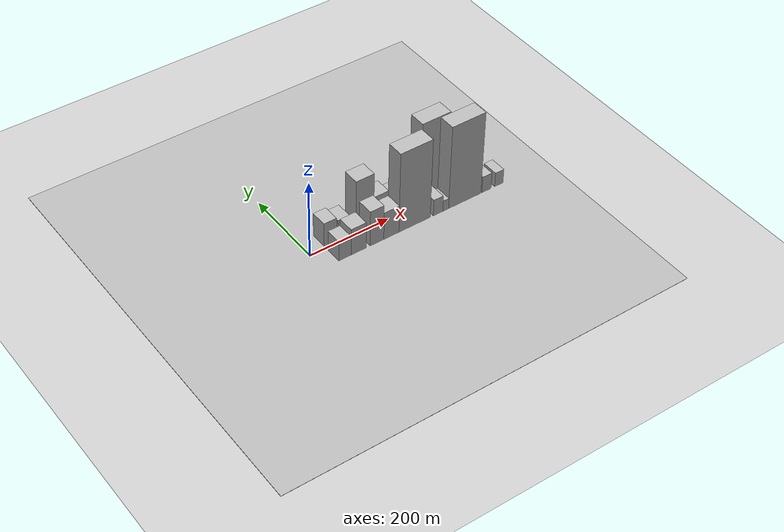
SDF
<?xml version="1.0" encoding="utf-8"?>

<sdf version="1.6">

   <world name="default">

      <gui fullscreen="0">

         <camera name="user_camera">

            <pose>-15 0 4.57585 0 0 0</pose>

            <view_controller>orbit</view_controller>

         </camera>

      </gui>

      <scene>

         <sky>

           <clouds>

             <speed>12</speed>

           </clouds>

         </sky>

         <ambient>0.4 0.4 0.4 1</ambient>

         <background>0.7 0.7 0.7 1</background>

         <shadows>1</shadows>

      </scene>

      <gravity>0 0 -9.8066</gravity>

      <magnetic_field>6e-06 2.3e-05 -4.2e-05</magnetic_field>

      <physics default="0" name="default_physics" type="ode">

         <ode>

            <solver>

               <type>quick</type>

               <iters>10</iters>

               <sor>1.0</sor>

               <use_dynamic_moi_rescaling>0</use_dynamic_moi_rescaling>

            </solver>

            <constraints>

               <cfm>0</cfm>

               <erp>0.2</erp>

               <contact_max_correcting_vel>100</contact_max_correcting_vel>

               <contact_surface_layer>0.001</contact_surface_layer>

            </constraints>

         </ode>

         <max_step_size>0.004</max_step_size>

         <real_time_factor>1</real_time_factor>

         <real_time_update_rate>250</real_time_update_rate>

      </physics>

      <light name="sun" type="directional">

         <cast_shadows>1</cast_shadows>

         <pose>0 0 10 0 0 0</pose>

         <diffuse>0.8 0.8 0.8 1</diffuse>

         <specular>0.2 0.2 0.2 1</specular>

         <attenuation>

            <range>1000</range>

            <constant>0.9</constant>

            <linear>0.01</linear>

            <quadratic>0.001</quadratic>

         </attenuation>

         <direction>-0.5 0.1 -0.9</direction>

      </light>

      <include>

         <name>ground_plane_1</name>

         <uri>model://HANNAS_ground_plane</uri>

         <pose>0 0 0  0 0 0</pose>

      </include>

      <include>

         <name>ground_plane_2</name>

         <uri>model://HANNAS_ground_plane</uri>

         <pose>100 0 0  0 0 0</pose>

      </include>

      <model name="building_1">

         <static>1</static>

         <pose frame="">55.9267 27.5000 0 0.000000 0.000000 1.570796</pose>

         <link name="link">

            <pose frame="">0 0 31.50 0 0 0</pose>

            <collision name="collision">

               <geometry>

                  <box>

                     <size>40.0000 31.8534 63.0000</size>

                  </box>

               </geometry>

               <max_contacts>10</max_contacts>

               <surface>

                  <contact>

                     <ode/>

                  </contact>

                  <bounce/>

                  <friction>

                     <torsional>

                        <ode/>

                     </torsional>

                     <ode/>

                  </friction>

               </surface>

            </collision>

            <visual name="visual">

               <cast_shadows>0</cast_shadows>

               <geometry>

                  <box>

                     <size>40.0000 31.8534 63.0000</size>

                  </box>

               </geometry>

               <material>

                  <script>

                     <uri>model://HANNAS_wall/materials/scripts</uri>

                     <uri>model://HANNAS_wall/materials/textures</uri>

                     <name>vrc/HANNAS_wall</name>

                  </script>

               </material>

            </visual>

            <self_collide>0</self_collide>

            <enable_wind>0</enable_wind>

            <kinematic>0</kinematic>

         </link>

      </model>

      <model name="building_2">

         <static>1</static>

         <pose frame="">90.5737 27.5000 0 0.000000 0.000000 1.570796</pose>

         <link name="link">

            <pose frame="">0 0 27.00 0 0 0</pose>

            <collision name="collision">

               <geometry>

                  <box>

                     <size>40.0000 29.4405 54.0000</size>

                  </box>

               </geometry>

               <max_contacts>10</max_contacts>

               <surface>

                  <contact>

                     <ode/>

                  </contact>

                  <bounce/>

                  <friction>

                     <torsional>

                        <ode/>

                     </torsional>

                     <ode/>

                  </friction>

               </surface>

            </collision>

            <visual name="visual">

               <cast_shadows>0</cast_shadows>

               <geometry>

                  <box>

                     <size>40.0000 29.4405 54.0000</size>

                  </box>

               </geometry>

               <material>

                  <script>

                     <uri>model://HANNAS_wall/materials/scripts</uri>

                     <uri>model://HANNAS_wall/materials/textures</uri>

                     <name>vrc/HANNAS_wall</name>

                  </script>

               </material>

            </visual>

            <self_collide>0</self_collide>

            <enable_wind>0</enable_wind>

            <kinematic>0</kinematic>

         </link>

      </model>

      <model name="building_3">

         <static>1</static>

         <pose frame="">118.4894 27.5000 0 0.000000 0.000000 1.570796</pose>

         <link name="link">

            <pose frame="">0 0 7.50 0 0 0</pose>

            <collision name="collision">

               <geometry>

                  <box>

                     <size>40.0000 6.3909 15.0000</size>

                  </box>

               </geometry>

               <max_contacts>10</max_contacts>

               <surface>

                  <contact>

                     <ode/>

                  </contact>

                  <bounce/>

                  <friction>

                     <torsional>

                        <ode/>

                     </torsional>

                     <ode/>

                  </friction>

               </surface>

            </collision>

            <visual name="visual">

               <cast_shadows>0</cast_shadows>

               <geometry>

                  <box>

                     <size>40.0000 6.3909 15.0000</size>

                  </box>

               </geometry>

               <material>

                  <script>

                     <uri>model://HANNAS_wall/materials/scripts</uri>

                     <uri>model://HANNAS_wall/materials/textures</uri>

                     <name>vrc/HANNAS_wall</name>

                  </script>

               </material>

            </visual>

            <self_collide>0</self_collide>

            <enable_wind>0</enable_wind>

            <kinematic>0</kinematic>

         </link>

      </model>

      <model name="building_4">

         <static>1</static>

         <pose frame="">144.8247 27.5000 0 0.000000 0.000000 1.570796</pose>

         <link name="link">

            <pose frame="">0 0 69.00 0 0 0</pose>

            <collision name="collision">

               <geometry>

                  <box>

                     <size>40.0000 46.2798 138.0000</size>

                  </box>

               </geometry>

               <max_contacts>10</max_contacts>

               <surface>

                  <contact>

                     <ode/>

                  </contact>

                  <bounce/>

                  <friction>

                     <torsional>

                        <ode/>

                     </torsional>

                     <ode/>

                  </friction>

               </surface>

            </collision>

            <visual name="visual">

               <cast_shadows>0</cast_shadows>

               <geometry>

                  <box>

                     <size>40.0000 46.2798 138.0000</size>

                  </box>

               </geometry>

               <material>

                  <script>

                     <uri>model://HANNAS_wall/materials/scripts</uri>

                     <uri>model://HANNAS_wall/materials/textures</uri>

                     <name>vrc/HANNAS_wall</name>

                  </script>

               </material>

            </visual>

            <self_collide>0</self_collide>

            <enable_wind>0</enable_wind>

            <kinematic>0</kinematic>

         </link>

      </model>

      <model name="building_5">

         <static>1</static>

         <pose frame="">187.1168 27.5000 0 0.000000 0.000000 1.570796</pose>

         <link name="link">

            <pose frame="">0 0 36.00 0 0 0</pose>

            <collision name="collision">

               <geometry>

                  <box>

                     <size>40.0000 38.3045 72.0000</size>

                  </box>

               </geometry>

               <max_contacts>10</max_contacts>

               <surface>

                  <contact>

                     <ode/>

                  </contact>

                  <bounce/>

                  <friction>

                     <torsional>

                        <ode/>

                     </torsional>

                     <ode/>

                  </friction>

               </surface>

            </collision>

            <visual name="visual">

               <cast_shadows>0</cast_shadows>

               <geometry>

                  <box>

                     <size>40.0000 38.3045 72.0000</size>

                  </box>

               </geometry>

               <material>

                  <script>

                     <uri>model://HANNAS_wall/materials/scripts</uri>

                     <uri>model://HANNAS_wall/materials/textures</uri>

                     <name>vrc/HANNAS_wall</name>

                  </script>

               </material>

            </visual>

            <self_collide>0</self_collide>

            <enable_wind>0</enable_wind>

            <kinematic>0</kinematic>

         </link>

      </model>

      <model name="building_6">

         <static>1</static>

         <pose frame="">222.0264 27.5000 0 0.000000 0.000000 1.570796</pose>

         <link name="link">

            <pose frame="">0 0 27.00 0 0 0</pose>

            <collision name="collision">

               <geometry>

                  <box>

                     <size>40.0000 31.5146 54.0000</size>

                  </box>

               </geometry>

               <max_contacts>10</max_contacts>

               <surface>

                  <contact>

                     <ode/>

                  </contact>

                  <bounce/>

                  <friction>

                     <torsional>

                        <ode/>

                     </torsional>

                     <ode/>

                  </friction>

               </surface>

            </collision>

            <visual name="visual">

               <cast_shadows>0</cast_shadows>

               <geometry>

                  <box>

                     <size>40.0000 31.5146 54.0000</size>

                  </box>

               </geometry>

               <material>

                  <script>

                     <uri>model://HANNAS_wall/materials/scripts</uri>

                     <uri>model://HANNAS_wall/materials/textures</uri>

                     <name>vrc/HANNAS_wall</name>

                  </script>

               </material>

            </visual>

            <self_collide>0</self_collide>

            <enable_wind>0</enable_wind>

            <kinematic>0</kinematic>

         </link>

      </model>

      <model name="building_7">

         <static>1</static>

         <pose frame="">265.1516 27.5000 0 0.000000 0.000000 1.570796</pose>

         <link name="link">

            <pose frame="">0 0 36.00 0 0 0</pose>

            <collision name="collision">

               <geometry>

                  <box>

                     <size>40.0000 36.7358 72.0000</size>

                  </box>

               </geometry>

               <max_contacts>10</max_contacts>

               <surface>

                  <contact>

                     <ode/>

                  </contact>

                  <bounce/>

                  <friction>

                     <torsional>

                        <ode/>

                     </torsional>

                     <ode/>

                  </friction>

               </surface>

            </collision>

            <visual name="visual">

               <cast_shadows>0</cast_shadows>

               <geometry>

                  <box>

                     <size>40.0000 36.7358 72.0000</size>

                  </box>

               </geometry>

               <material>

                  <script>

                     <uri>model://HANNAS_wall/materials/scripts</uri>

                     <uri>model://HANNAS_wall/materials/textures</uri>

                     <name>vrc/HANNAS_wall</name>

                  </script>

               </material>

            </visual>

            <self_collide>0</self_collide>

            <enable_wind>0</enable_wind>

            <kinematic>0</kinematic>

         </link>

      </model>

      <model name="building_8">

         <static>1</static>

         <pose frame="">327.7672 27.5000 0 0.000000 0.000000 1.570796</pose>

         <link name="link">

            <pose frame="">0 0 106.50 0 0 0</pose>

            <collision name="collision">

               <geometry>

                  <box>

                     <size>40.0000 74.4953 213.0000</size>

                  </box>

               </geometry>

               <max_contacts>10</max_contacts>

               <surface>

                  <contact>

                     <ode/>

                  </contact>

                  <bounce/>

                  <friction>

                     <torsional>

                        <ode/>

                     </torsional>

                     <ode/>

                  </friction>

               </surface>

            </collision>

            <visual name="visual">

               <cast_shadows>0</cast_shadows>

               <geometry>

                  <box>

                     <size>40.0000 74.4953 213.0000</size>

                  </box>

               </geometry>

               <material>

                  <script>

                     <uri>model://HANNAS_wall/materials/scripts</uri>

                     <uri>model://HANNAS_wall/materials/textures</uri>

                     <name>vrc/HANNAS_wall</name>

                  </script>

               </material>

            </visual>

            <self_collide>0</self_collide>

            <enable_wind>0</enable_wind>

            <kinematic>0</kinematic>

         </link>

      </model>

      <model name="building_9">

         <static>1</static>

         <pose frame="">369.6242 27.5000 0 0.000000 0.000000 1.570796</pose>

         <link name="link">

            <pose frame="">0 0 10.50 0 0 0</pose>

            <collision name="collision">

               <geometry>

                  <box>

                     <size>40.0000 9.2188 21.0000</size>

                  </box>

               </geometry>

               <max_contacts>10</max_contacts>

               <surface>

                  <contact>

                     <ode/>

                  </contact>

                  <bounce/>

                  <friction>

                     <torsional>

                        <ode/>

                     </torsional>

                     <ode/>

                  </friction>

               </surface>

            </collision>

            <visual name="visual">

               <cast_shadows>0</cast_shadows>

               <geometry>

                  <box>

                     <size>40.0000 9.2188 21.0000</size>

                  </box>

               </geometry>

               <material>

                  <script>

                     <uri>model://HANNAS_wall/materials/scripts</uri>

                     <uri>model://HANNAS_wall/materials/textures</uri>

                     <name>vrc/HANNAS_wall</name>

                  </script>

               </material>

            </visual>

            <self_collide>0</self_collide>

            <enable_wind>0</enable_wind>

            <kinematic>0</kinematic>

         </link>

      </model>

      <model name="building_10">

         <static>1</static>

         <pose frame="">398.1830 27.5000 0 0.000000 0.000000 1.570796</pose>

         <link name="link">

            <pose frame="">0 0 43.50 0 0 0</pose>

            <collision name="collision">

               <geometry>

                  <box>

                     <size>40.0000 47.8987 87.0000</size>

                  </box>

               </geometry>

               <max_contacts>10</max_contacts>

               <surface>

                  <contact>

                     <ode/>

                  </contact>

                  <bounce/>

                  <friction>

                     <torsional>

                        <ode/>

                     </torsional>

                     <ode/>

                  </friction>

               </surface>

            </collision>

            <visual name="visual">

               <cast_shadows>0</cast_shadows>

               <geometry>

                  <box>

                     <size>40.0000 47.8987 87.0000</size>

                  </box>

               </geometry>

               <material>

                  <script>

                     <uri>model://HANNAS_wall/materials/scripts</uri>

                     <uri>model://HANNAS_wall/materials/textures</uri>

                     <name>vrc/HANNAS_wall</name>

                  </script>

               </material>

            </visual>

            <self_collide>0</self_collide>

            <enable_wind>0</enable_wind>

            <kinematic>0</kinematic>

         </link>

      </model>

      <model name="building_11">

         <static>1</static>

         <pose frame="">431.9772 27.5000 0 0.000000 0.000000 1.570796</pose>

         <link name="link">

            <pose frame="">0 0 19.50 0 0 0</pose>

            <collision name="collision">

               <geometry>

                  <box>

                     <size>40.0000 19.6897 39.0000</size>

                  </box>

               </geometry>

               <max_contacts>10</max_contacts>

               <surface>

                  <contact>

                     <ode/>

                  </contact>

                  <bounce/>

                  <friction>

                     <torsional>

                        <ode/>

                     </torsional>

                     <ode/>

                  </friction>

               </surface>

            </collision>

            <visual name="visual">

               <cast_shadows>0</cast_shadows>

               <geometry>

                  <box>

                     <size>40.0000 19.6897 39.0000</size>

                  </box>

               </geometry>

               <material>

                  <script>

                     <uri>model://HANNAS_wall/materials/scripts</uri>

                     <uri>model://HANNAS_wall/materials/textures</uri>

                     <name>vrc/HANNAS_wall</name>

                  </script>

               </material>

            </visual>

            <self_collide>0</self_collide>

            <enable_wind>0</enable_wind>

            <kinematic>0</kinematic>

         </link>

      </model>

      <model name="building_12">

         <static>1</static>

         <pose frame="">453.6052 27.5000 0 0.000000 0.000000 1.570796</pose>

         <link name="link">

            <pose frame="">0 0 13.50 0 0 0</pose>

            <collision name="collision">

               <geometry>

                  <box>

                     <size>40.0000 11.5662 27.0000</size>

                  </box>

               </geometry>

               <max_contacts>10</max_contacts>

               <surface>

                  <contact>

                     <ode/>

                  </contact>

                  <bounce/>

                  <friction>

                     <torsional>

                        <ode/>

                     </torsional>

                     <ode/>

                  </friction>

               </surface>

            </collision>

            <visual name="visual">

               <cast_shadows>0</cast_shadows>

               <geometry>

                  <box>

                     <size>40.0000 11.5662 27.0000</size>

                  </box>

               </geometry>

               <material>

                  <script>

                     <uri>model://HANNAS_wall/materials/scripts</uri>

                     <uri>model://HANNAS_wall/materials/textures</uri>

                     <name>vrc/HANNAS_wall</name>

                  </script>

               </material>

            </visual>

            <self_collide>0</self_collide>

            <enable_wind>0</enable_wind>

            <kinematic>0</kinematic>

         </link>

      </model>

      <model name="building_13">

         <static>1</static>

         <pose frame="">55.3529 -27.5000 0 0.000000 0.000000 1.570796</pose>

         <link name="link">

            <pose frame="">0 0 27.00 0 0 0</pose>

            <collision name="collision">

               <geometry>

                  <box>

                     <size>40.0000 30.7059 54.0000</size>

                  </box>

               </geometry>

               <max_contacts>10</max_contacts>

               <surface>

                  <contact>

                     <ode/>

                  </contact>

                  <bounce/>

                  <friction>

                     <torsional>

                        <ode/>

                     </torsional>

                     <ode/>

                  </friction>

               </surface>

            </collision>

            <visual name="visual">

               <cast_shadows>0</cast_shadows>

               <geometry>

                  <box>

                     <size>40.0000 30.7059 54.0000</size>

                  </box>

               </geometry>

               <material>

                  <script>

                     <uri>model://HANNAS_wall/materials/scripts</uri>

                     <uri>model://HANNAS_wall/materials/textures</uri>

                     <name>vrc/HANNAS_wall</name>

                  </script>

               </material>

            </visual>

            <self_collide>0</self_collide>

            <enable_wind>0</enable_wind>

            <kinematic>0</kinematic>

         </link>

      </model>

      <model name="building_14">

         <static>1</static>

         <pose frame="">90.0154 -27.5000 0 0.000000 0.000000 1.570796</pose>

         <link name="link">

            <pose frame="">0 0 36.00 0 0 0</pose>

            <collision name="collision">

               <geometry>

                  <box>

                     <size>40.0000 38.6189 72.0000</size>

                  </box>

               </geometry>

               <max_contacts>10</max_contacts>

               <surface>

                  <contact>

                     <ode/>

                  </contact>

                  <bounce/>

                  <friction>

                     <torsional>

                        <ode/>

                     </torsional>

                     <ode/>

                  </friction>

               </surface>

            </collision>

            <visual name="visual">

               <cast_shadows>0</cast_shadows>

               <geometry>

                  <box>

                     <size>40.0000 38.6189 72.0000</size>

                  </box>

               </geometry>

               <material>

                  <script>

                     <uri>model://HANNAS_wall/materials/scripts</uri>

                     <uri>model://HANNAS_wall/materials/textures</uri>

                     <name>vrc/HANNAS_wall</name>

                  </script>

               </material>

            </visual>

            <self_collide>0</self_collide>

            <enable_wind>0</enable_wind>

            <kinematic>0</kinematic>

         </link>

      </model>

      <model name="building_15">

         <static>1</static>

         <pose frame="">136.9796 -27.5000 0 0.000000 0.000000 1.570796</pose>

         <link name="link">

            <pose frame="">0 0 48.00 0 0 0</pose>

            <collision name="collision">

               <geometry>

                  <box>

                     <size>40.0000 35.3094 96.0000</size>

                  </box>

               </geometry>

               <max_contacts>10</max_contacts>

               <surface>

                  <contact>

                     <ode/>

                  </contact>

                  <bounce/>

                  <friction>

                     <torsional>

                        <ode/>

                     </torsional>

                     <ode/>

                  </friction>

               </surface>

            </collision>

            <visual name="visual">

               <cast_shadows>0</cast_shadows>

               <geometry>

                  <box>

                     <size>40.0000 35.3094 96.0000</size>

                  </box>

               </geometry>

               <material>

                  <script>

                     <uri>model://HANNAS_wall/materials/scripts</uri>

                     <uri>model://HANNAS_wall/materials/textures</uri>

                     <name>vrc/HANNAS_wall</name>

                  </script>

               </material>

            </visual>

            <self_collide>0</self_collide>

            <enable_wind>0</enable_wind>

            <kinematic>0</kinematic>

         </link>

      </model>

      <model name="building_16">

         <static>1</static>

         <pose frame="">174.3470 -27.5000 0 0.000000 0.000000 1.570796</pose>

         <link name="link">

            <pose frame="">0 0 37.50 0 0 0</pose>

            <collision name="collision">

               <geometry>

                  <box>

                     <size>40.0000 39.4255 75.0000</size>

                  </box>

               </geometry>

               <max_contacts>10</max_contacts>

               <surface>

                  <contact>

                     <ode/>

                  </contact>

                  <bounce/>

                  <friction>

                     <torsional>

                        <ode/>

                     </torsional>

                     <ode/>

                  </friction>

               </surface>

            </collision>

            <visual name="visual">

               <cast_shadows>0</cast_shadows>

               <geometry>

                  <box>

                     <size>40.0000 39.4255 75.0000</size>

                  </box>

               </geometry>

               <material>

                  <script>

                     <uri>model://HANNAS_wall/materials/scripts</uri>

                     <uri>model://HANNAS_wall/materials/textures</uri>

                     <name>vrc/HANNAS_wall</name>

                  </script>

               </material>

            </visual>

            <self_collide>0</self_collide>

            <enable_wind>0</enable_wind>

            <kinematic>0</kinematic>

         </link>

      </model>

      <model name="building_17">

         <static>1</static>

         <pose frame="">235.5237 -27.5000 0 0.000000 0.000000 1.570796</pose>

         <link name="link">

            <pose frame="">0 0 108.00 0 0 0</pose>

            <collision name="collision">

               <geometry>

                  <box>

                     <size>40.0000 82.9277 216.0000</size>

                  </box>

               </geometry>

               <max_contacts>10</max_contacts>

               <surface>

                  <contact>

                     <ode/>

                  </contact>

                  <bounce/>

                  <friction>

                     <torsional>

                        <ode/>

                     </torsional>

                     <ode/>

                  </friction>

               </surface>

            </collision>

            <visual name="visual">

               <cast_shadows>0</cast_shadows>

               <geometry>

                  <box>

                     <size>40.0000 82.9277 216.0000</size>

                  </box>

               </geometry>

               <material>

                  <script>

                     <uri>model://HANNAS_wall/materials/scripts</uri>

                     <uri>model://HANNAS_wall/materials/textures</uri>

                     <name>vrc/HANNAS_wall</name>

                  </script>

               </material>

            </visual>

            <self_collide>0</self_collide>

            <enable_wind>0</enable_wind>

            <kinematic>0</kinematic>

         </link>

      </model>

      <model name="building_18">

         <static>1</static>

         <pose frame="">297.6559 -27.5000 0 0.000000 0.000000 1.570796</pose>

         <link name="link">

            <pose frame="">0 0 22.50 0 0 0</pose>

            <collision name="collision">

               <geometry>

                  <box>

                     <size>40.0000 25.3367 45.0000</size>

                  </box>

               </geometry>

               <max_contacts>10</max_contacts>

               <surface>

                  <contact>

                     <ode/>

                  </contact>

                  <bounce/>

                  <friction>

                     <torsional>

                        <ode/>

                     </torsional>

                     <ode/>

                  </friction>

               </surface>

            </collision>

            <visual name="visual">

               <cast_shadows>0</cast_shadows>

               <geometry>

                  <box>

                     <size>40.0000 25.3367 45.0000</size>

                  </box>

               </geometry>

               <material>

                  <script>

                     <uri>model://HANNAS_wall/materials/scripts</uri>

                     <uri>model://HANNAS_wall/materials/textures</uri>

                     <name>vrc/HANNAS_wall</name>

                  </script>

               </material>

            </visual>

            <self_collide>0</self_collide>

            <enable_wind>0</enable_wind>

            <kinematic>0</kinematic>

         </link>

      </model>

      <model name="building_19">

         <static>1</static>

         <pose frame="">318.1983 -27.5000 0 0.000000 0.000000 1.570796</pose>

         <link name="link">

            <pose frame="">0 0 15.00 0 0 0</pose>

            <collision name="collision">

               <geometry>

                  <box>

                     <size>40.0000 15.7481 30.0000</size>

                  </box>

               </geometry>

               <max_contacts>10</max_contacts>

               <surface>

                  <contact>

                     <ode/>

                  </contact>

                  <bounce/>

                  <friction>

                     <torsional>

                        <ode/>

                     </torsional>

                     <ode/>

                  </friction>

               </surface>

            </collision>

            <visual name="visual">

               <cast_shadows>0</cast_shadows>

               <geometry>

                  <box>

                     <size>40.0000 15.7481 30.0000</size>

                  </box>

               </geometry>

               <material>

                  <script>

                     <uri>model://HANNAS_wall/materials/scripts</uri>

                     <uri>model://HANNAS_wall/materials/textures</uri>

                     <name>vrc/HANNAS_wall</name>

                  </script>

               </material>

            </visual>

            <self_collide>0</self_collide>

            <enable_wind>0</enable_wind>

            <kinematic>0</kinematic>

         </link>

      </model>

      <model name="building_20">

         <static>1</static>

         <pose frame="">370.0122 -27.5000 0 0.000000 0.000000 1.570796</pose>

         <link name="link">

            <pose frame="">0 0 112.50 0 0 0</pose>

            <collision name="collision">

               <geometry>

                  <box>

                     <size>40.0000 87.8795 225.0000</size>

                  </box>

               </geometry>

               <max_contacts>10</max_contacts>

               <surface>

                  <contact>

                     <ode/>

                  </contact>

                  <bounce/>

                  <friction>

                     <torsional>

                        <ode/>

                     </torsional>

                     <ode/>

                  </friction>

               </surface>

            </collision>

            <visual name="visual">

               <cast_shadows>0</cast_shadows>

               <geometry>

                  <box>

                     <size>40.0000 87.8795 225.0000</size>

                  </box>

               </geometry>

               <material>

                  <script>

                     <uri>model://HANNAS_wall/materials/scripts</uri>

                     <uri>model://HANNAS_wall/materials/textures</uri>

                     <name>vrc/HANNAS_wall</name>

                  </script>

               </material>

            </visual>

            <self_collide>0</self_collide>

            <enable_wind>0</enable_wind>

            <kinematic>0</kinematic>

         </link>

      </model>

      <model name="building_21">

         <static>1</static>

         <pose frame="">429.5561 -27.5000 0 0.000000 0.000000 1.570796</pose>

         <link name="link">

            <pose frame="">0 0 22.50 0 0 0</pose>

            <collision name="collision">

               <geometry>

                  <box>

                     <size>40.0000 25.2084 45.0000</size>

                  </box>

               </geometry>

               <max_contacts>10</max_contacts>

               <surface>

                  <contact>

                     <ode/>

                  </contact>

                  <bounce/>

                  <friction>

                     <torsional>

                        <ode/>

                     </torsional>

                     <ode/>

                  </friction>

               </surface>

            </collision>

            <visual name="visual">

               <cast_shadows>0</cast_shadows>

               <geometry>

                  <box>

                     <size>40.0000 25.2084 45.0000</size>

                  </box>

               </geometry>

               <material>

                  <script>

                     <uri>model://HANNAS_wall/materials/scripts</uri>

                     <uri>model://HANNAS_wall/materials/textures</uri>

                     <name>vrc/HANNAS_wall</name>

                  </script>

               </material>

            </visual>

            <self_collide>0</self_collide>

            <enable_wind>0</enable_wind>

            <kinematic>0</kinematic>

         </link>

      </model>

      <model name="building_22">

         <static>1</static>

         <pose frame="">463.7696 -27.5000 0 0.000000 0.000000 1.570796</pose>

         <link name="link">

            <pose frame="">0 0 19.50 0 0 0</pose>

            <collision name="collision">

               <geometry>

                  <box>

                     <size>40.0000 23.2187 39.0000</size>

                  </box>

               </geometry>

               <max_contacts>10</max_contacts>

               <surface>

                  <contact>

                     <ode/>

                  </contact>

                  <bounce/>

                  <friction>

                     <torsional>

                        <ode/>

                     </torsional>

                     <ode/>

                  </friction>

               </surface>

            </collision>

            <visual name="visual">

               <cast_shadows>0</cast_shadows>

               <geometry>

                  <box>

                     <size>40.0000 23.2187 39.0000</size>

                  </box>

               </geometry>

               <material>

                  <script>

                     <uri>model://HANNAS_wall/materials/scripts</uri>

                     <uri>model://HANNAS_wall/materials/textures</uri>

                     <name>vrc/HANNAS_wall</name>

                  </script>

               </material>

            </visual>

            <self_collide>0</self_collide>

            <enable_wind>0</enable_wind>

            <kinematic>0</kinematic>

         </link>

      </model>

   </world>

</sdf>

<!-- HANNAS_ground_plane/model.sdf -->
<sdf version="1.4">
<model name="HANNAS_ground_plane">
  <static>true</static>
    <link name="link">
      <collision name="collision">
        <geometry>
          <plane>
            <normal>0 0 1</normal>
            <size>1000 1000</size>
          </plane>
        </geometry>
        <surface>
          <friction>
            <ode>
              <mu>100</mu>
              <mu2>50</mu2>
            </ode>
          </friction>
        </surface>
      </collision>
      <visual name="visual">
        <cast_shadows>false</cast_shadows>
        <geometry>
          <plane>
            <normal>0 0 1</normal>
            <size>1000 1000</size>
          </plane>
        </geometry>
        <material>
          <script>
            <uri>model://HANNAS_ground_plane/materials/scripts/HANNAS_ground_plane.material</uri>
	    <uri>model://HANNAS_ground_plane/materials/textures</uri>
            <name>HANNASGroundPlane/Image</name>
          </script>
        </material>
      </visual>
    </link>
  </model>
</sdf>
